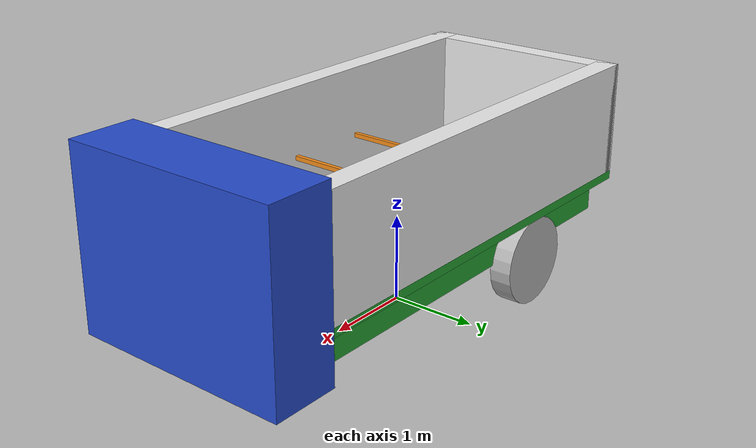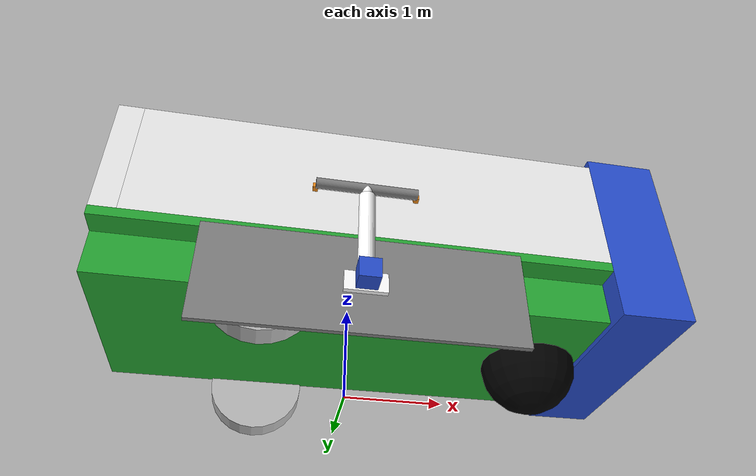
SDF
<?xml version="1.0" ?>
<sdf version="1.10">

  <model name="garbage_truck">
    <static>false</static>

    <include>
            <uri>model://garbagebot_arm</uri>
            <pose>0 -1.3 0.5 0 0 3.14159</pose>  <!-- x y z roll pitch yaw -->
    </include>

    <joint name='right_to_garbagebot_arm_base_link' type='fixed'>
        <pose relative_to='right'>0 0 0 0 0 0</pose>
        <parent>right</parent>
        <child>garbagebot_arm::base_link</child>
    </joint>

    <!-- Chassis -->
    <link name="chassis">
      <pose>0 0 0.8 0 0 0</pose>
      <inertial>
        <mass>1000</mass>
        <inertia>
          <ixx>500</ixx> <iyy>1200</iyy> <izz>1000</izz>
          <ixy>0</ixy> <ixz>0</ixz> <iyz>0</iyz>
        </inertia>
      </inertial>
      <collision name="chassis_collision">
        <geometry>
          <box>
            <size>5 2 0.6</size>
          </box>
        </geometry>
      </collision>
      <visual name="chassis_visual">
        <geometry>
          <box>
            <size>5 2 0.5</size>
          </box>
        </geometry>
        <material>
          <script>
            <uri>file://media/materials/scripts/gazebo.material</uri>
            <name>Gazebo/Green</name>
          </script>
        </material>
      </visual>

      <!-- IMU Sensor -->
      <sensor name="imu_sensor" type="imu">
        <always_on>1</always_on>
        <update_rate>50</update_rate>
        <visualize>true</visualize>
        <topic>imu</topic>
      </sensor>

      <!-- GPS Sensor -->
      <sensor name="gps_sensor" type="navsat">
        <always_on>true</always_on>
        <update_rate>50</update_rate>
        <topic>gps</topic>
      </sensor>

    </link>

    <!-- Car Structure -->
    <link name="front">
      <pose>2.875 0 1.5 0 0 0</pose>
      <inertial>
        <mass>1</mass>
        <inertia>
          <ixx>500</ixx> <iyy>1200</iyy> <izz>1000</izz>
          <ixy>0</ixy> <ixz>0</ixz> <iyz>0</iyz>
        </inertia>
      </inertial>
      <collision name="front_collision">
        <geometry>
          <box>
            <size> 0.75 2.5 2</size>
          </box>
        </geometry>
      </collision>
      <visual name="front_visual">
        <geometry>
          <box>
            <size> 0.75 2.5 2</size>
          </box>
        </geometry>
        <material>
          <script>
            <uri>file://media/materials/scripts/gazebo.material</uri>
            <name>Gazebo/Blue</name>
          </script>
        </material>
      </visual>
    </link>

    <joint name="joint_front_and_chasis" type="fixed">
      <parent>chassis</parent>
      <child>front</child>
    </joint>

    <link name="bottom">
      <pose> 0 0 1.05 0 0 0</pose>
      <inertial>
        <mass>1</mass>
        <inertia>
          <ixx>500</ixx> <iyy>1200</iyy> <izz>1000</izz>
          <ixy>0</ixy> <ixz>0</ixz> <iyz>0</iyz>
        </inertia>
      </inertial>
      <collision name="bottom_collision">
        <geometry>
          <box>
            <size> 5 2.5 0.1</size>
          </box>
        </geometry>
      </collision>
      <visual name="bottom_visual">
        <geometry>
          <box>
            <size> 5 2.5 0.1</size>
          </box>
        </geometry>
        <material>
          <script>
            <uri>file://media/materials/scripts/gazebo.material</uri>
            <name>Gazebo/Green</name>
          </script>
        </material>
      </visual>
    </link>

    <joint name="joint_bottom_and_chasis" type="fixed">
      <parent>chassis</parent>
      <child>bottom</child>
    </joint>

    <link name="back">
      <pose> -2.375 0 1.75 0 0 0</pose>
      <inertial>
        <mass>1</mass>
        <inertia>
          <ixx>500</ixx> <iyy>1200</iyy> <izz>1000</izz>
          <ixy>0</ixy> <ixz>0</ixz> <iyz>0</iyz>
        </inertia>
      </inertial>
      <collision name="back_collision">
        <geometry>
          <box>
            <size> 0.25 2.5 1.3</size>
          </box>
        </geometry>
      </collision>
      <visual name="back_visual">
        <geometry>
          <box>
            <size> 0.25 2.5 1.3</size>
          </box>
        </geometry>
        <material>
          <script>
            <uri>file://media/materials/scripts/gazebo.material</uri>
            <name>Gazebo/White</name>
          </script>
        </material>
      </visual>
    </link>

    <joint name="joint_back_and_bottom" type="fixed">
      <parent>bottom</parent>
      <child>back</child>
    </joint>

    <link name="left">
      <pose> 0 1.125 1.75 0 0 0</pose>
      <inertial>
        <mass>1</mass>
        <inertia>
          <ixx>500</ixx> <iyy>1200</iyy> <izz>1000</izz>
          <ixy>0</ixy> <ixz>0</ixz> <iyz>0</iyz>
        </inertia>
      </inertial>
      <collision name="left_collision">
        <geometry>
          <box>
            <size> 5 0.25 1.3</size>
          </box>
        </geometry>
      </collision>
      <visual name="left_visual">
        <geometry>
          <box>
            <size> 5 0.25 1.3</size>
          </box>
        </geometry>
        <material>
          <script>
            <uri>file://media/materials/scripts/gazebo.material</uri>
            <name>Gazebo/White</name>
          </script>
        </material>
      </visual>
    </link>

    <joint name="joint_left_and_bottom" type="fixed">
      <parent>bottom</parent>
      <child>left</child>
    </joint>

    <link name="right">
      <pose> 0 -1.125 1.75 0 0 0</pose>
      <inertial>
        <mass>1</mass>
        <inertia>
          <ixx>500</ixx> <iyy>1200</iyy> <izz>1000</izz>
          <ixy>0</ixy> <ixz>0</ixz> <iyz>0</iyz>
        </inertia>
      </inertial>
      <collision name="right_collision">
        <geometry>
          <box>
            <size> 5 0.25 1.3</size>
          </box>
        </geometry>
      </collision>
      <visual name="right_visual">
        <geometry>
          <box>
            <size> 5 0.25 1.3</size>
          </box>
        </geometry>
        <material>
          <script>
            <uri>file://media/materials/scripts/gazebo.material</uri>
            <name>Gazebo/White</name>
          </script>
        </material>
      </visual>
    </link>

    <joint name="joint_right_and_bottom" type="fixed">
      <parent>bottom</parent>
      <child>right</child>
    </joint>

    <!-- Wheels -->

    <link name="wheel_center_left">
      <pose> -0.9 1.1 0.5 -1.5707 0 0</pose>
      <inertial>
        <mass>1</mass>
      </inertial>
      <collision name="collision">
        <geometry>
          <cylinder>
            <radius>0.5</radius>
            <length>0.25</length>
          </cylinder>
        </geometry>
      </collision>
      <visual name="visual">
        <geometry>
          <cylinder>
            <radius>0.5</radius>
            <length>0.25</length>
          </cylinder>
        </geometry>
      </visual>
    </link>

    <link name="wheel_center_right">
      <pose> -0.9 -1.1 0.5 -1.5707 0 0</pose>
      <inertial>
        <mass>1</mass>
      </inertial>
      <collision name="collision">
        <geometry>
          <cylinder>
            <radius>0.5</radius>
            <length>0.25</length>
          </cylinder>
        </geometry>
      </collision>
      <visual name="visual">
        <geometry>
          <cylinder>
            <radius>0.5</radius>
            <length>0.25</length>
          </cylinder>
        </geometry>
      </visual>
    </link>

    <!--caster wheel-->
    <frame name="caster_frame" attached_to='chassis'>
        <pose>2 0 -0.3 0 0 0</pose>
    </frame>

    <link name='caster'>
        <pose relative_to='caster_frame'/>
        <inertial>
            <mass>1</mass>
            <inertia>
                <ixx>0.016</ixx>
                <ixy>0</ixy>
                <ixz>0</ixz>
                <iyy>0.016</iyy>
                <iyz>0</iyz>
                <izz>0.016</izz>
            </inertia>
        </inertial>
        <visual name='visual'>
            <geometry>
                <sphere>
                    <radius>0.5</radius>
                </sphere>
            </geometry>
            <material>
                <ambient>0.0 0.0 0.0 1</ambient>
                <diffuse>0.0 0.0 0.0 1</diffuse>
                <specular>0.0 0.0 0.0 1</specular>
            </material>
        </visual>
        <collision name='collision'>
            <geometry>
                <sphere>
                    <radius>0.5</radius>
                </sphere>
            </geometry>
        </collision>
    </link>

    <!-- Wheel joints -->

    <joint name="joint_wheel_center_left" type="revolute">
      <parent>chassis</parent>
      <child>wheel_center_left</child>
      <axis>
        <xyz expressed_in='__model__'>0 1 0</xyz>
        <limit>
          <lower>-1.79769e+308</lower>
          <upper>1.79769e+308</upper>
          <effort>10000</effort>
          <velocity>100.0</velocity>
        </limit>
      </axis>
    </joint>

    <joint name="joint_wheel_center_right" type="revolute">
      <parent>chassis</parent>
      <child>wheel_center_right</child>
      <axis>
        <xyz expressed_in='__model__'>0 1 0</xyz>
        <limit>
          <lower>-1.79769e+308</lower>
          <upper>1.79769e+308</upper>
          <effort>10000</effort>
          <velocity>100.0</velocity>
        </limit>
      </axis>
    </joint>

    <joint name='caster_wheel' type='ball'>
        <parent>chassis</parent>
        <child>caster</child>
    </joint>

  <!-- Differential Driving -->
  <plugin
      filename="gz-sim-diff-drive-system"
      name="gz::sim::systems::DiffDrive">
      <left_joint>joint_wheel_center_left</left_joint>
      <right_joint>joint_wheel_center_right</right_joint>
      <wheel_separation>2.2</wheel_separation>
      <wheel_radius>0.5</wheel_radius>
      <odom_publish_frequency>1</odom_publish_frequency>
      <topic>cmd_vel</topic>
      <max_torque>10000.0</max_torque>
      <max_velocity>100.0</max_velocity>
  </plugin>

  <!-- IMU Sensor -->
  <plugin filename="gz-sim-imu-system"
        name="gz::sim::systems::Imu">
  </plugin>

  <!-- GPS Sensor -->
  <plugin filename="gz-sim-navsat-system"
        name="gz::sim::systems::NavSat">
  </plugin>

  <plugin
    filename="gz-sim-joint-position-controller-system"
    name="gz::sim::systems::JointPositionController">
    <joint_name>garbagebot_arm::link1_to_link2</joint_name>
    <topic>joint_1_prismatic_pos</topic>
    <p_gain>3000</p_gain>
    <i_gain>100</i_gain>
    <d_gain>1000</d_gain>
    <i_max>1000</i_max>
    <i_min>-1000</i_min>
    <cmd_max>50000</cmd_max>
    <cmd_min>-50000</cmd_min>
    <initial_position>0</initial_position>
  </plugin>

  <plugin
    filename="gz-sim-joint-position-controller-system"
    name="gz::sim::systems::JointPositionController">
    <joint_name>garbagebot_arm::link2_to_link3</joint_name>
    <topic>joint_2_revolute_pos</topic>
    <p_gain>3000</p_gain>
    <i_gain>100</i_gain>
    <d_gain>1000</d_gain>
    <i_max>1000</i_max>
    <i_min>-1000</i_min>
    <cmd_max>50000</cmd_max>
    <cmd_min>-50000</cmd_min>
    <initial_position>0</initial_position>
  </plugin>

  <plugin
    filename="gz-sim-joint-position-controller-system"
    name="gz::sim::systems::JointPositionController">
    <joint_name>garbagebot_arm::link3_to_link4</joint_name>
    <topic>joint_3_prismatic_pos</topic>
    <p_gain>3000</p_gain>
    <i_gain>100</i_gain>
    <d_gain>1000</d_gain>
    <i_max>1000</i_max>
    <i_min>-1000</i_min>
    <cmd_max>50000</cmd_max>
    <cmd_min>-50000</cmd_min>
    <initial_position>0</initial_position>
  </plugin>

  <plugin
    filename="gz-sim-joint-position-controller-system"
    name="gz::sim::systems::JointPositionController">
    <joint_name>garbagebot_arm::link4_to_link6_flange</joint_name>
    <topic>joint_4_revolute_pos</topic>
    <p_gain>300</p_gain>
    <i_gain>10</i_gain>
    <d_gain>100</d_gain>
    <i_max>100</i_max>
    <i_min>-100</i_min>
    <cmd_max>5000</cmd_max>
    <cmd_min>-5000</cmd_min>
    <initial_position>0</initial_position>
  </plugin>

  <plugin
    filename="gz-sim-joint-position-controller-system"
    name="gz::sim::systems::JointPositionController">
    <joint_name>garbagebot_arm::gripper_base_to_gripper_left</joint_name>
    <topic>joint_5_prismatic_pos</topic>
    <p_gain>3000</p_gain>
    <i_gain>100</i_gain>
    <d_gain>1000</d_gain>
    <i_max>1000</i_max>
    <i_min>-1000</i_min>
    <cmd_max>50000</cmd_max>
    <cmd_min>-50000</cmd_min>
    <initial_position>0</initial_position>
  </plugin>

  <plugin
    filename="gz-sim-joint-position-controller-system"
    name="gz::sim::systems::JointPositionController">
    <joint_name>garbagebot_arm::gripper_base_to_gripper_right</joint_name>
    <topic>joint_6_prismatic_pos</topic>
    <p_gain>3000</p_gain>
    <i_gain>100</i_gain>
    <d_gain>1000</d_gain>
    <i_max>1000</i_max>
    <i_min>-1000</i_min>
    <cmd_max>50000</cmd_max>
    <cmd_min>-50000</cmd_min>
    <initial_position>0</initial_position>
  </plugin>

  <link name="rgbd_camera_link">
    <pose>0 -1.5 0.5 0 0 -1.5707</pose>
    <inertial>
      <mass>0.1</mass>
      <inertia>
        <ixx>0.000166667</ixx>
        <iyy>0.000166667</iyy>
        <izz>0.000166667</izz>
      </inertia>
    </inertial>
    <collision name="collision">
      <geometry>
        <box>
          <size>0.2 0.2 0.2</size>
        </box>
      </geometry>
    </collision>
    <visual name="visual">
      <geometry>
        <box>
          <size>0.2 0.2 0.2</size>
        </box>
      </geometry>
      <material>
        <script>
          <uri>file://media/materials/scripts/gazebo.material</uri>
          <name>Gazebo/Blue</name>
        </script>
      </material>
    </visual>
    <sensor name="rgbd_camera" type="rgbd_camera">
      <camera>
        <horizontal_fov>1.047</horizontal_fov>
        <image>
          <width>320</width>
          <height>240</height>
        </image>
        <clip>
          <near>0.1</near>
          <far>100</far>
        </clip>
      </camera>
      <always_on>1</always_on>
      <update_rate>30</update_rate>
      <visualize>true</visualize>
      <topic>rgbd_camera</topic>
      <enable_metrics>true</enable_metrics>
    </sensor>
  </link>

  <joint name='right_to_rgbd_camera_link' type='fixed'>
      <pose relative_to='right'>0 0 0 0 0 0</pose>
      <parent>right</parent>
      <child>rgbd_camera_link</child>
  </joint>

  </model>
</sdf>
